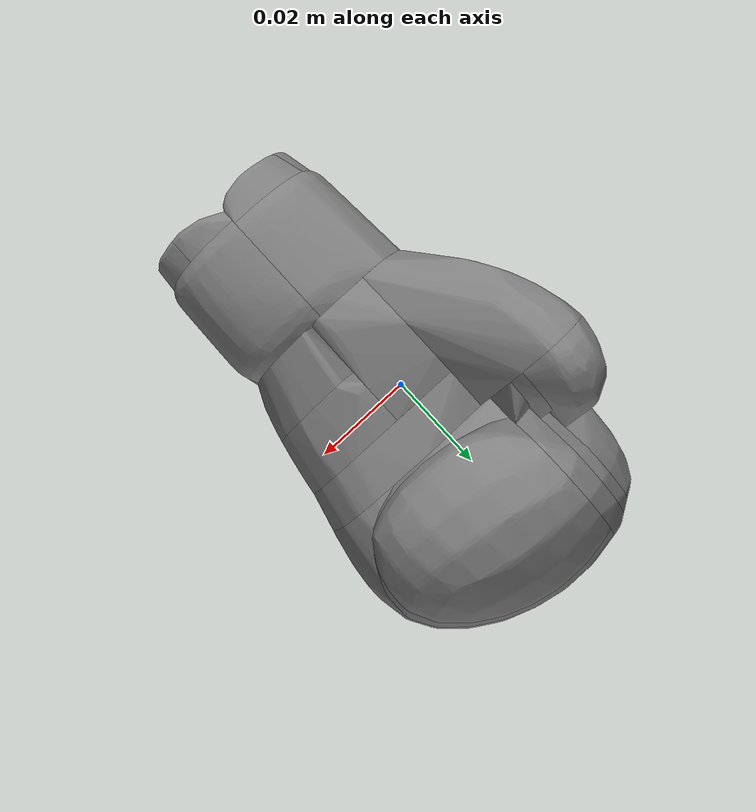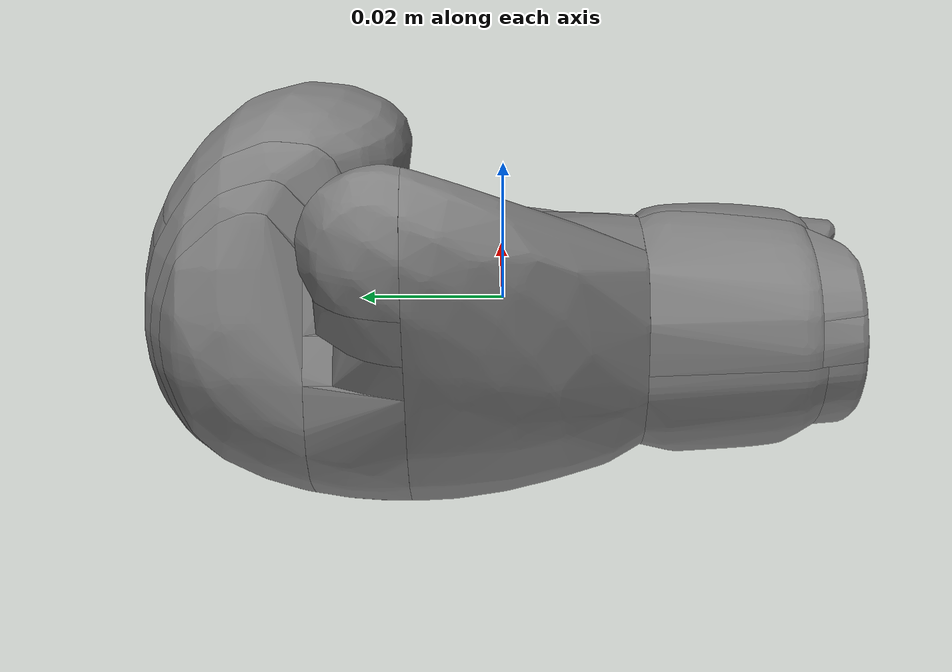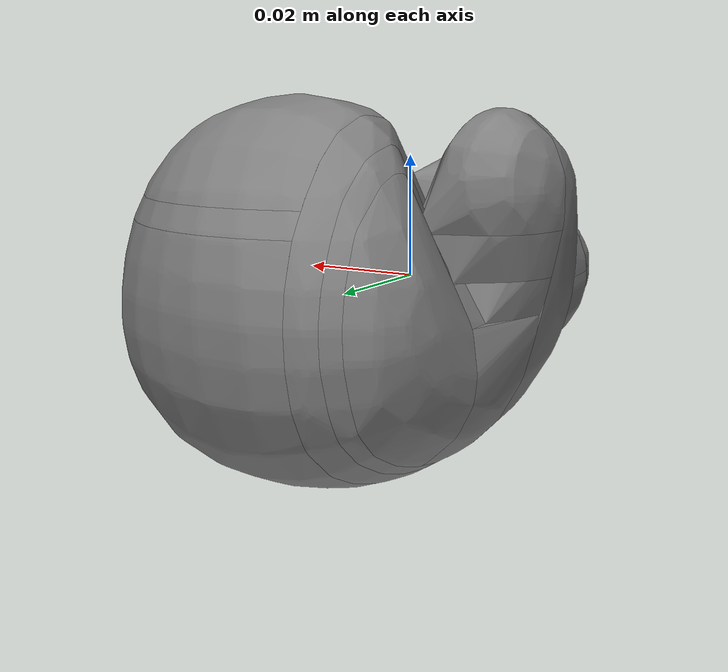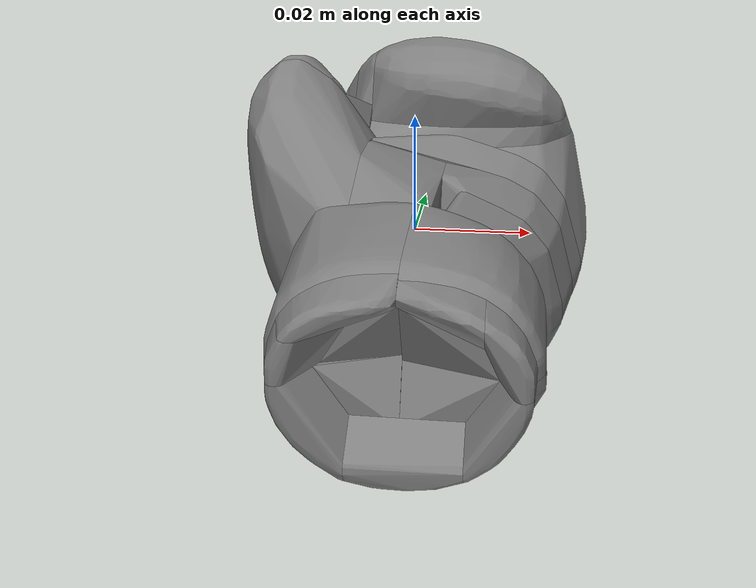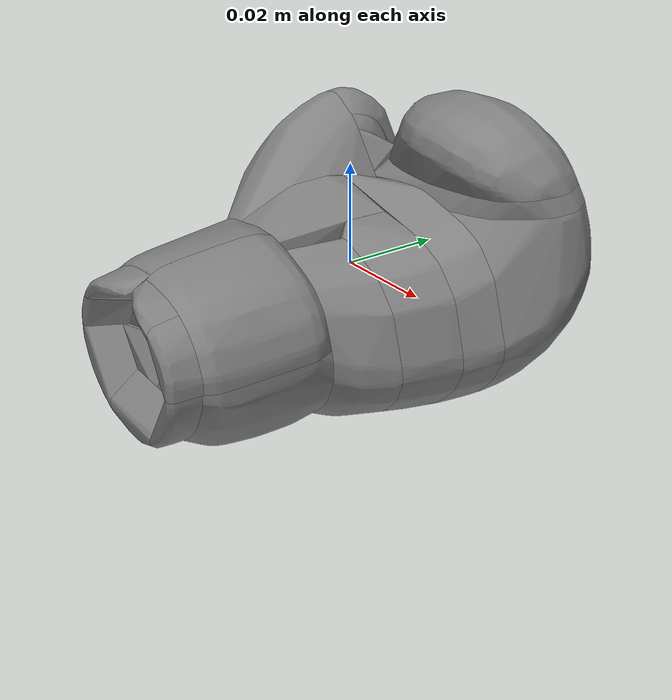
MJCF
<mujoco model="boxing_glove_84424f446e7f4c3b8bf1c3204b581f28">
  <default>
    <default class="visual">
      <geom type="mesh" contype="0" conaffinity="0" group="1"/>
    </default>
    <default class="collision">
      <geom type="mesh" condim="6" group="0"/>
    </default>
  </default>
  <asset>
    <texture type="2d" name="texture" file="material_0.png"/>
    <material name="Material.001" texture="texture" specular="0.5" shininess="0.25"/>
    <mesh file="visual_mesh.obj" name="visual_mesh"/>
    <mesh file="meshes/convex_piece_0.obj" name="convex_piece_0"/>
    <mesh file="meshes/convex_piece_1.obj" name="convex_piece_1"/>
    <mesh file="meshes/convex_piece_10.obj" name="convex_piece_10"/>
    <mesh file="meshes/convex_piece_11.obj" name="convex_piece_11"/>
    <mesh file="meshes/convex_piece_12.obj" name="convex_piece_12"/>
    <mesh file="meshes/convex_piece_13.obj" name="convex_piece_13"/>
    <mesh file="meshes/convex_piece_14.obj" name="convex_piece_14"/>
    <mesh file="meshes/convex_piece_15.obj" name="convex_piece_15"/>
    <mesh file="meshes/convex_piece_16.obj" name="convex_piece_16"/>
    <mesh file="meshes/convex_piece_17.obj" name="convex_piece_17"/>
    <mesh file="meshes/convex_piece_18.obj" name="convex_piece_18"/>
    <mesh file="meshes/convex_piece_19.obj" name="convex_piece_19"/>
    <mesh file="meshes/convex_piece_2.obj" name="convex_piece_2"/>
    <mesh file="meshes/convex_piece_20.obj" name="convex_piece_20"/>
    <mesh file="meshes/convex_piece_21.obj" name="convex_piece_21"/>
    <mesh file="meshes/convex_piece_22.obj" name="convex_piece_22"/>
    <mesh file="meshes/convex_piece_23.obj" name="convex_piece_23"/>
    <mesh file="meshes/convex_piece_24.obj" name="convex_piece_24"/>
    <mesh file="meshes/convex_piece_25.obj" name="convex_piece_25"/>
    <mesh file="meshes/convex_piece_26.obj" name="convex_piece_26"/>
    <mesh file="meshes/convex_piece_27.obj" name="convex_piece_27"/>
    <mesh file="meshes/convex_piece_28.obj" name="convex_piece_28"/>
    <mesh file="meshes/convex_piece_29.obj" name="convex_piece_29"/>
    <mesh file="meshes/convex_piece_3.obj" name="convex_piece_3"/>
    <mesh file="meshes/convex_piece_4.obj" name="convex_piece_4"/>
    <mesh file="meshes/convex_piece_5.obj" name="convex_piece_5"/>
    <mesh file="meshes/convex_piece_6.obj" name="convex_piece_6"/>
    <mesh file="meshes/convex_piece_7.obj" name="convex_piece_7"/>
    <mesh file="meshes/convex_piece_8.obj" name="convex_piece_8"/>
    <mesh file="meshes/convex_piece_9.obj" name="convex_piece_9"/>
  </asset>
  <worldbody>
    <body>
    <body name="object">
      <geom material="Material.001" mesh="visual_mesh" class="visual"/>
      <geom mesh="convex_piece_0" class="collision"/>
      <geom mesh="convex_piece_1" class="collision"/>
      <geom mesh="convex_piece_10" class="collision"/>
      <geom mesh="convex_piece_11" class="collision"/>
      <geom mesh="convex_piece_12" class="collision"/>
      <geom mesh="convex_piece_13" class="collision"/>
      <geom mesh="convex_piece_14" class="collision"/>
      <geom mesh="convex_piece_15" class="collision"/>
      <geom mesh="convex_piece_16" class="collision"/>
      <geom mesh="convex_piece_17" class="collision"/>
      <geom mesh="convex_piece_18" class="collision"/>
      <geom mesh="convex_piece_19" class="collision"/>
      <geom mesh="convex_piece_2" class="collision"/>
      <geom mesh="convex_piece_20" class="collision"/>
      <geom mesh="convex_piece_21" class="collision"/>
      <geom mesh="convex_piece_22" class="collision"/>
      <geom mesh="convex_piece_23" class="collision"/>
      <geom mesh="convex_piece_24" class="collision"/>
      <geom mesh="convex_piece_25" class="collision"/>
      <geom mesh="convex_piece_26" class="collision"/>
      <geom mesh="convex_piece_27" class="collision"/>
      <geom mesh="convex_piece_28" class="collision"/>
      <geom mesh="convex_piece_29" class="collision"/>
      <geom mesh="convex_piece_3" class="collision"/>
      <geom mesh="convex_piece_4" class="collision"/>
      <geom mesh="convex_piece_5" class="collision"/>
      <geom mesh="convex_piece_6" class="collision"/>
      <geom mesh="convex_piece_7" class="collision"/>
      <geom mesh="convex_piece_8" class="collision"/>
      <geom mesh="convex_piece_9" class="collision"/>
    </body>
      <site rgba="0 0 0 0" size="0.005" pos="0 0 -0.04" name="bottom_site" />
      <site rgba="0 0 0 0" size="0.005" pos="0 0 0.04" name="top_site" />
      <site rgba="0 0 0 0" size="0.005" pos="0.005 0.005 0" name="horizontal_radius_site" />
    </body>
  </worldbody>
</mujoco>
